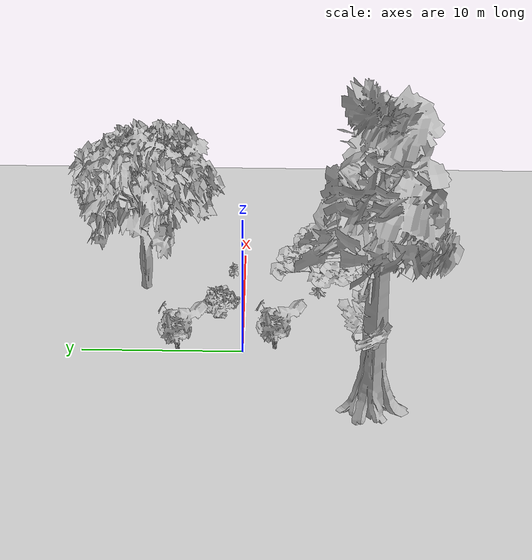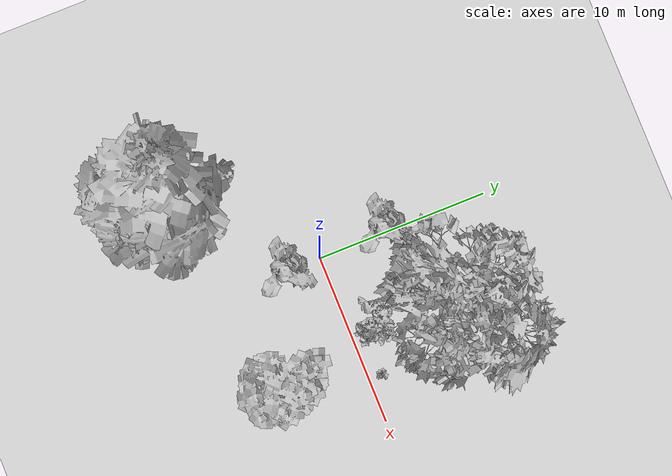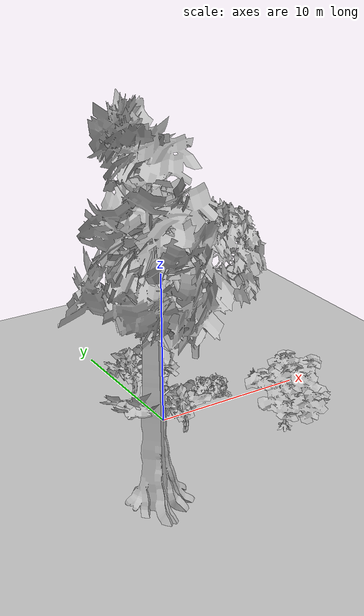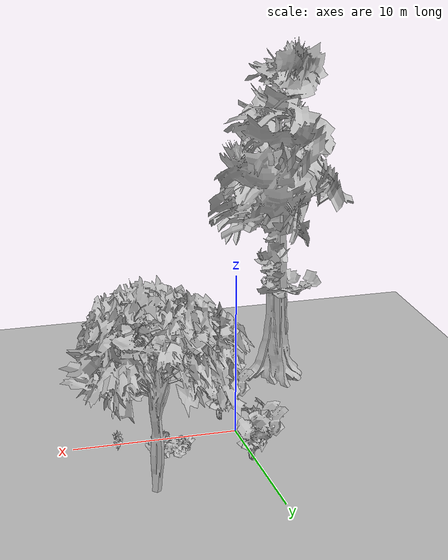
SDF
<sdf version="1.7">
 <world name="default">
  <light name="sun" type="directional">
   <pose>0 0 10 0 -0 0</pose>
   <diffuse>0.8 0.8 0.8 1</diffuse>
   <specular>0.2 0.2 0.2 1</specular>
   <attenuation>
    <range>1000</range>
    <constant>0.9</constant>
    <linear>0.01</linear>
    <quadratic>0.001</quadratic>
   </attenuation>
   <direction>-0.5 0.1 -0.9</direction>
   <spot><inner_angle>0</inner_angle><outer_angle>0</outer_angle><falloff>0</falloff></spot>
  </light>
  <model name="ground_plane">
   <static>1</static>
   <link name="link">
    <collision name="collision">
     <geometry><plane><normal>0 0 1</normal><size>100 100</size></plane></geometry>
     <surface>
      <contact><collide_bitmask>65535</collide_bitmask></contact>
      <friction><ode><mu>100</mu><mu2>50</mu2></ode></friction>
     </surface>
    </collision>
    <visual name="visual">
     <cast_shadows>0</cast_shadows>
     <geometry><plane><normal>0 0 1</normal><size>100 100</size></plane></geometry>
     <material>
      <script><uri>file://media/materials/scripts/gazebo.material</uri><name>Gazebo/Grey</name></script>
     </material>
    </visual>
   </link>
  </model>
  <gravity>0 0 -9.8</gravity>
  <magnetic_field>6e-06 2.3e-05 -4.2e-05</magnetic_field>
  <atmosphere type="adiabatic"/>
  <physics type="ode">
   <max_step_size>0.001</max_step_size>
   <real_time_factor>1</real_time_factor>
   <real_time_update_rate>1000</real_time_update_rate>
  </physics>
  <scene><ambient>0.4 0.4 0.4 1</ambient><background>0.7 0.7 0.7 1</background><shadows>1</shadows></scene>
  <audio><device>default</device></audio>
  <spherical_coordinates>
   <surface_model>EARTH_WGS84</surface_model>
   <latitude_deg>0</latitude_deg>
   <longitude_deg>0</longitude_deg>
   <elevation>0</elevation>
   <heading_deg>0</heading_deg>
  </spherical_coordinates>
  <model name="Bush 0">
   <static>1</static>
   <pose>0.411567 -1.93799 0 1.57079 -0 0</pose>
   <link name="link">
    <collision name="collision">
     <geometry><mesh><scale>5 5 5</scale><uri>model://bush_0/meshes/bush_0.obj</uri></mesh></geometry>
    </collision>
    <visual name="visual">
     <geometry><mesh><scale>5 5 5</scale><uri>model://bush_0/meshes/bush_0.obj</uri></mesh></geometry>
    </visual>
   </link>
  </model>
  <model name="Bush 0_0">
   <static>1</static>
   <pose>0.148655 4.09362 0 1.57079 -0 0</pose>
   <link name="link">
    <collision name="collision">
     <geometry><mesh><scale>5 5 5</scale><uri>model://bush_0/meshes/bush_0.obj</uri></mesh></geometry>
    </collision>
    <visual name="visual">
     <geometry><mesh><scale>5 5 5</scale><uri>model://bush_0/meshes/bush_0.obj</uri></mesh></geometry>
    </visual>
   </link>
  </model>
  <model name="Bush 2">
   <static>1</static>
   <pose>4.53308 1.51964 0 1.57079 -0 0</pose>
   <link name="link">
    <collision name="collision">
     <geometry><mesh><scale>5 5 5</scale><uri>model://bush_2/meshes/bush_2.obj</uri></mesh></geometry>
    </collision>
    <visual name="visual">
     <geometry><mesh><scale>5 5 5</scale><uri>model://bush_2/meshes/bush_2.obj</uri></mesh></geometry>
    </visual>
   </link>
  </model>
  <model name="Tree 1">
   <static>1</static>
   <pose>6.01331 -4.78428 0 1.57079 -0 0</pose>
   <link name="link">
    <collision name="collision">
     <geometry><mesh><scale>5 5 5</scale><uri>model://tree_1/meshes/tree_1.obj</uri></mesh></geometry>
    </collision>
    <visual name="visual">
     <geometry><mesh><scale>5 5 5</scale><uri>model://tree_1/meshes/tree_1.obj</uri></mesh></geometry>
    </visual>
   </link>
  </model>
  <model name="Oak tree">
   <static>1</static>
   <pose>7.48699 0.760715 0 1.57079 -0 0</pose>
   <link name="link">
    <collision name="collision">
     <geometry><mesh><scale>5 5 5</scale><uri>model://tree_6/meshes/tree.obj</uri></mesh></geometry>
    </collision>
    <visual name="visual">
     <geometry><mesh><scale>5 5 5</scale><uri>model://tree_6/meshes/tree.obj</uri></mesh></geometry>
    </visual>
   </link>
  </model>
  <model name="Tree 2">
   <static>1</static>
   <pose>6.34837 6.39412 0 1.57079 -0 0</pose>
   <link name="link">
    <collision name="collision">
     <geometry><mesh><scale>5 5 5</scale><uri>model://tree_2/meshes/tree_2.obj</uri></mesh></geometry>
    </collision>
    <visual name="visual">
     <geometry><mesh><scale>5 5 5</scale><uri>model://tree_2/meshes/tree_2.obj</uri></mesh></geometry>
    </visual>
   </link>
  </model>
  <model name="Tree 8">
   <static>1</static>
   <pose>-4.98857 -7.63731 0 1.57079 -0 0</pose>
   <link name="link">
    <collision name="collision">
     <geometry><mesh><scale>5 5 5</scale><uri>model://tree_8/meshes/tree_8.obj</uri></mesh></geometry>
    </collision>
    <visual name="visual">
     <geometry><mesh><scale>5 5 5</scale><uri>model://tree_8/meshes/tree_8.obj</uri></mesh></geometry>
    </visual>
   </link>
  </model>
 </world>
</sdf>
